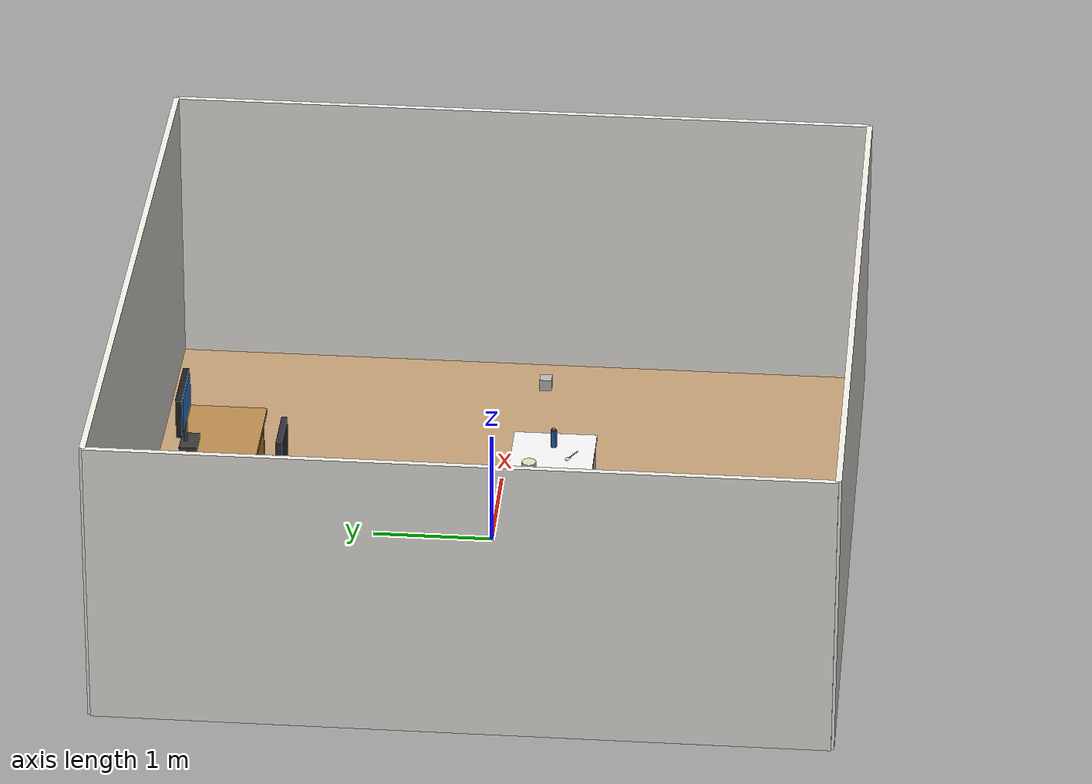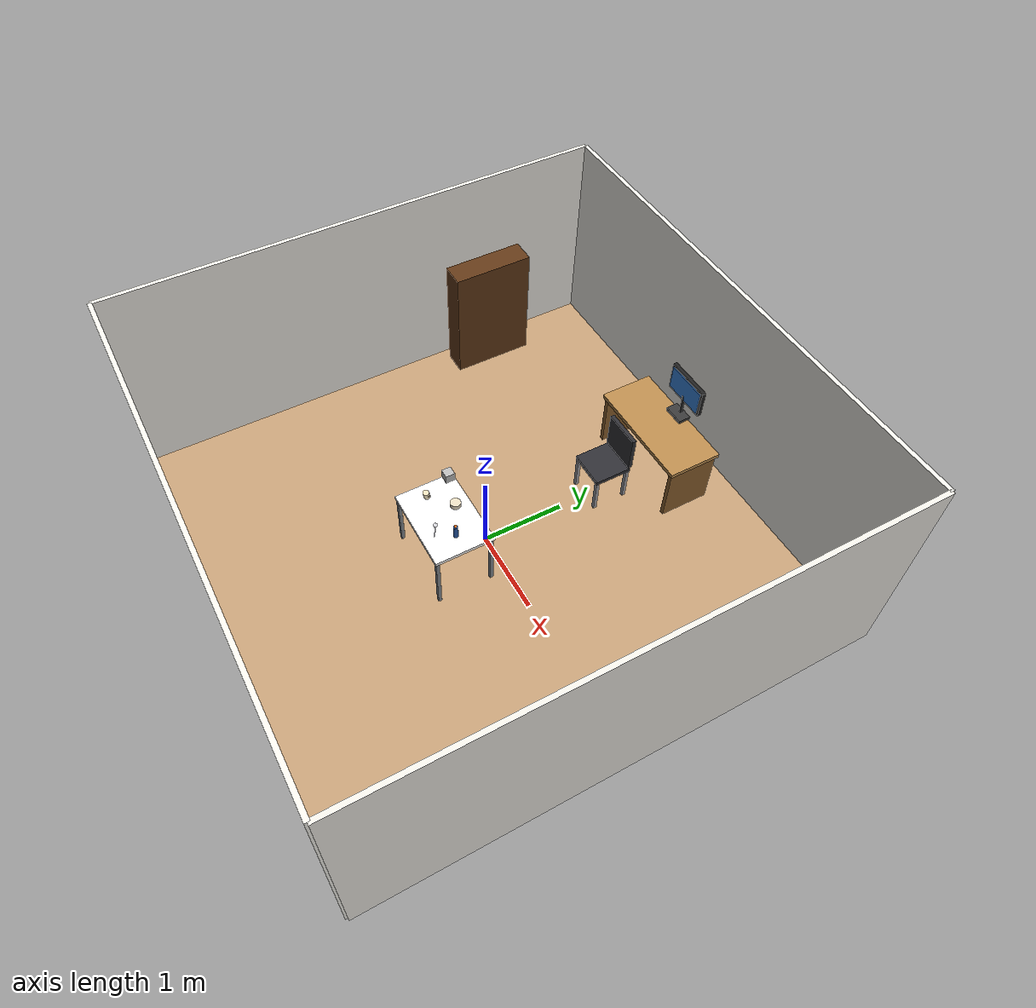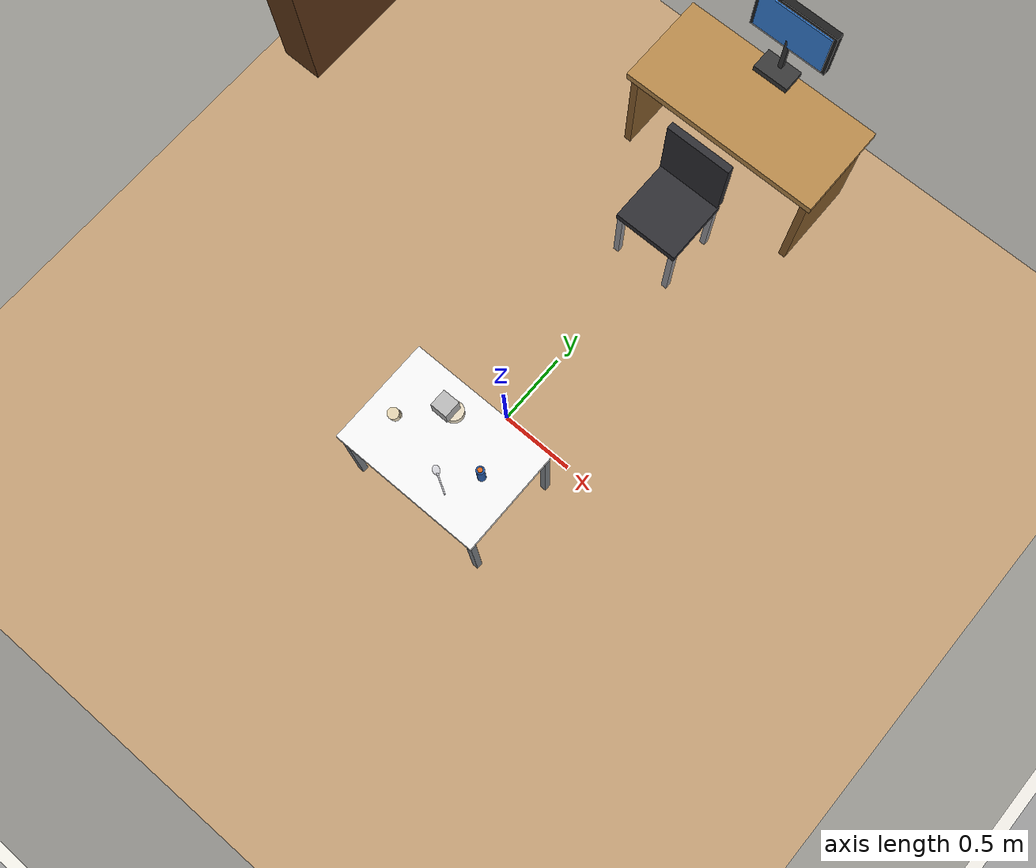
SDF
<?xml version="1.0" ?>
<sdf version="1.10">
  <world name="bps_room">
    <physics name="1ms" type="ignored">
      <max_step_size>0.001</max_step_size>
      <real_time_factor>1</real_time_factor>
      <real_time_update_rate>1000</real_time_update_rate>
    </physics>
    <gravity>0 0 -9.8</gravity>
    <magnetic_field>5.5645e-06 2.28758e-05 -4.23884e-05</magnetic_field>
    <atmosphere type="adiabatic"/>
    <scene>
      <ambient>0.4 0.4 0.4 1</ambient>
      <background>0.7 0.7 0.7 1</background>
      <shadows>true</shadows>
    </scene>
    <plugin name="gz::sim::systems::Physics" filename="gz-sim-physics-system"/>
    <plugin name="gz::sim::systems::UserCommands" filename="gz-sim-user-commands-system"/>
    <plugin name="gz::sim::systems::SceneBroadcaster" filename="gz-sim-scene-broadcaster-system"/>
    <plugin name="gz::sim::systems::Sensors" filename="gz-sim-sensors-system">
      <render_engine>ogre2</render_engine>
    </plugin>
    <plugin name="gz::sim::systems::Contact" filename="gz-sim-contact-system"/>
    <plugin filename="gz-sim-label-system" name="gz::sim::systems::Label"/>
    <light name="sun" type="directional">
      <pose>0 0 10 0 0 0</pose>
      <cast_shadows>true</cast_shadows>
      <intensity>1</intensity>
      <direction>-0.5 0.1 -0.9</direction>
      <diffuse>0.8 0.8 0.8 1</diffuse>
      <specular>0.2 0.2 0.2 1</specular>
      <attenuation><range>1000</range><linear>0.01</linear><constant>0.9</constant><quadratic>0.001</quadratic></attenuation>
      <spot><inner_angle>0</inner_angle><outer_angle>0</outer_angle><falloff>0</falloff></spot>
    </light>
    <light name="ambient_fill" type="directional">
      <pose>0 0 4 0 0 0</pose>
      <diffuse>0.4 0.4 0.4 1</diffuse>
      <specular>0.0 0.0 0.0 1</specular>
      <direction>0.3 -0.3 -1</direction>
    </light>
    <model name="floor">
      <static>true</static>
      <pose>0 0 0 0 0 0</pose>
      <link name="link">
        <collision name="collision"><geometry><box><size>6 6 0.02</size></box></geometry></collision>
        <visual name="visual"><geometry><box><size>6 6 0.02</size></box></geometry><material><ambient>0.76 0.62 0.46 1</ambient><diffuse>0.76 0.62 0.46 1</diffuse></material></visual>
      </link>
    </model>
    <model name="wall_north">
      <static>true</static>
      <pose>0 3 1.25 0 0 0</pose>
      <link name="link">
        <collision name="collision"><geometry><box><size>6 0.05 2.5</size></box></geometry></collision>
        <visual name="visual"><geometry><box><size>6 0.05 2.5</size></box></geometry><material><ambient>0.95 0.94 0.91 1</ambient><diffuse>0.95 0.94 0.91 1</diffuse></material></visual>
      </link>
    </model>
    <model name="wall_south">
      <static>true</static>
      <pose>0 -3 1.25 0 0 0</pose>
      <link name="link">
        <collision name="collision"><geometry><box><size>6 0.05 2.5</size></box></geometry></collision>
        <visual name="visual"><geometry><box><size>6 0.05 2.5</size></box></geometry><material><ambient>0.95 0.94 0.91 1</ambient><diffuse>0.95 0.94 0.91 1</diffuse></material></visual>
      </link>
    </model>
    <model name="wall_east">
      <static>true</static>
      <pose>3 0 1.25 0 0 0</pose>
      <link name="link">
        <collision name="collision"><geometry><box><size>0.05 6 2.5</size></box></geometry></collision>
        <visual name="visual"><geometry><box><size>0.05 6 2.5</size></box></geometry><material><ambient>0.93 0.92 0.89 1</ambient><diffuse>0.93 0.92 0.89 1</diffuse></material></visual>
      </link>
    </model>
    <model name="wall_west">
      <static>true</static>
      <pose>-3 0 1.25 0 0 0</pose>
      <link name="link">
        <collision name="collision"><geometry><box><size>0.05 6 2.5</size></box></geometry></collision>
        <visual name="visual"><geometry><box><size>0.05 6 2.5</size></box></geometry><material><ambient>0.93 0.92 0.89 1</ambient><diffuse>0.93 0.92 0.89 1</diffuse></material></visual>
      </link>
    </model>
    <model name="bookshelf_body">
      <static>true</static>
      <pose>-2.7 1.5 0.75 0 0 0</pose>
      <link name="link">
        <collision name="collision"><geometry><box><size>0.3 1.0 1.5</size></box></geometry></collision>
        <visual name="visual"><geometry><box><size>0.3 1.0 1.5</size></box></geometry><material><ambient>0.38 0.22 0.09 1</ambient><diffuse>0.38 0.22 0.09 1</diffuse></material></visual>
      </link>
    </model>
    <model name="shelf_1">
      <static>true</static>
      <pose>-2.7 1.5 0.4 0 0 0</pose>
      <link name="link">
        <collision name="collision"><geometry><box><size>0.28 0.95 0.02</size></box></geometry></collision>
        <visual name="visual"><geometry><box><size>0.28 0.95 0.02</size></box></geometry><material><ambient>0.50 0.32 0.14 1</ambient><diffuse>0.50 0.32 0.14 1</diffuse></material></visual>
      </link>
    </model>
    <model name="shelf_2">
      <static>true</static>
      <pose>-2.7 1.5 0.85 0 0 0</pose>
      <link name="link">
        <collision name="collision"><geometry><box><size>0.28 0.95 0.02</size></box></geometry></collision>
        <visual name="visual"><geometry><box><size>0.28 0.95 0.02</size></box></geometry><material><ambient>0.50 0.32 0.14 1</ambient><diffuse>0.50 0.32 0.14 1</diffuse></material></visual>
      </link>
    </model>
    <model name="shelf_3">
      <static>true</static>
      <pose>-2.7 1.5 1.25 0 0 0</pose>
      <link name="link">
        <collision name="collision"><geometry><box><size>0.28 0.95 0.02</size></box></geometry></collision>
        <visual name="visual"><geometry><box><size>0.28 0.95 0.02</size></box></geometry><material><ambient>0.50 0.32 0.14 1</ambient><diffuse>0.50 0.32 0.14 1</diffuse></material></visual>
      </link>
    </model>
    <model name="books_row1">
      <static>true</static>
      <pose>-2.62 1.5 0.62 0 0 0</pose>
      <link name="link">
        <visual name="visual"><geometry><box><size>0.04 0.8 0.2</size></box></geometry><material><ambient>0.78 0.18 0.18 1</ambient><diffuse>0.78 0.18 0.18 1</diffuse></material></visual>
      </link>
    </model>
    <model name="books_row2">
      <static>true</static>
      <pose>-2.62 1.5 1.06 0 0 0</pose>
      <link name="link">
        <visual name="visual"><geometry><box><size>0.04 0.7 0.18</size></box></geometry><material><ambient>0.18 0.32 0.72 1</ambient><diffuse>0.18 0.32 0.72 1</diffuse></material></visual>
      </link>
    </model>
    <model name="desk">
      <static>true</static>
      <pose>0 2.3 0.75 0 0 0</pose>
      <link name="link">
        <collision name="collision"><geometry><box><size>1.4 0.65 0.05</size></box></geometry></collision>
        <visual name="visual"><geometry><box><size>1.4 0.65 0.05</size></box></geometry><material><ambient>0.72 0.54 0.30 1</ambient><diffuse>0.72 0.54 0.30 1</diffuse></material></visual>
      </link>
    </model>
    <model name="desk_leg_left">
      <static>true</static>
      <pose>-0.65 2.3 0.375 0 0 0</pose>
      <link name="link">
        <collision name="collision"><geometry><box><size>0.05 0.6 0.75</size></box></geometry></collision>
        <visual name="visual"><geometry><box><size>0.05 0.6 0.75</size></box></geometry><material><ambient>0.55 0.38 0.18 1</ambient><diffuse>0.55 0.38 0.18 1</diffuse></material></visual>
      </link>
    </model>
    <model name="desk_leg_right">
      <static>true</static>
      <pose>0.65 2.3 0.375 0 0 0</pose>
      <link name="link">
        <collision name="collision"><geometry><box><size>0.05 0.6 0.75</size></box></geometry></collision>
        <visual name="visual"><geometry><box><size>0.05 0.6 0.75</size></box></geometry><material><ambient>0.55 0.38 0.18 1</ambient><diffuse>0.55 0.38 0.18 1</diffuse></material></visual>
      </link>
    </model>
    <model name="monitor_base">
      <static>true</static>
      <pose>0 2.55 0.82 0 0 0</pose>
      <link name="link">
        <collision name="collision"><geometry><box><size>0.25 0.15 0.04</size></box></geometry></collision>
        <visual name="visual"><geometry><box><size>0.25 0.15 0.04</size></box></geometry><material><ambient>0.22 0.22 0.22 1</ambient><diffuse>0.22 0.22 0.22 1</diffuse></material></visual>
      </link>
    </model>
    <model name="monitor_stand">
      <static>true</static>
      <pose>0 2.58 0.97 0 0 0</pose>
      <link name="link">
        <collision name="collision"><geometry><box><size>0.03 0.03 0.26</size></box></geometry></collision>
        <visual name="visual"><geometry><box><size>0.03 0.03 0.26</size></box></geometry><material><ambient>0.22 0.22 0.22 1</ambient><diffuse>0.22 0.22 0.22 1</diffuse></material></visual>
      </link>
    </model>
    <model name="monitor_screen">
      <static>true</static>
      <pose>0 2.6 1.2 0 0 0</pose>
      <link name="link">
        <collision name="collision"><geometry><box><size>0.55 0.05 0.35</size></box></geometry></collision>
        <visual name="visual"><geometry><box><size>0.55 0.05 0.35</size></box></geometry><material><ambient>0.12 0.12 0.12 1</ambient><diffuse>0.12 0.12 0.12 1</diffuse></material></visual>
      </link>
    </model>
    <model name="monitor_face">
      <static>true</static>
      <pose>0 2.57 1.2 0 0 0</pose>
      <link name="link">
        <visual name="visual"><geometry><box><size>0.5 0.01 0.3</size></box></geometry><material><ambient>0.22 0.52 0.88 1</ambient><diffuse>0.22 0.52 0.88 1</diffuse><emissive>0.10 0.25 0.45 1</emissive></material></visual>
      </link>
    </model>
    <model name="chair_seat">
      <static>true</static>
      <pose>0 1.55 0.48 0 0 0</pose>
      <link name="link">
        <collision name="collision"><geometry><box><size>0.45 0.45 0.05</size></box></geometry></collision>
        <visual name="visual"><geometry><box><size>0.45 0.45 0.05</size></box></geometry><material><ambient>0.18 0.18 0.20 1</ambient><diffuse>0.18 0.18 0.20 1</diffuse></material></visual>
      </link>
    </model>
    <model name="chair_back">
      <static>true</static>
      <pose>0 1.77 0.75 0 0 0</pose>
      <link name="link">
        <collision name="collision"><geometry><box><size>0.45 0.05 0.45</size></box></geometry></collision>
        <visual name="visual"><geometry><box><size>0.45 0.05 0.45</size></box></geometry><material><ambient>0.18 0.18 0.20 1</ambient><diffuse>0.18 0.18 0.20 1</diffuse></material></visual>
      </link>
    </model>
    <model name="chair_leg_fl">
      <static>true</static>
      <pose>-0.2 1.35 0.24 0 0 0</pose>
      <link name="link">
        <collision name="collision"><geometry><box><size>0.04 0.04 0.48</size></box></geometry></collision>
        <visual name="visual"><geometry><box><size>0.04 0.04 0.48</size></box></geometry><material><ambient>0.60 0.60 0.62 1</ambient><diffuse>0.60 0.60 0.62 1</diffuse></material></visual>
      </link>
    </model>
    <model name="chair_leg_fr">
      <static>true</static>
      <pose>0.2 1.35 0.24 0 0 0</pose>
      <link name="link">
        <collision name="collision"><geometry><box><size>0.04 0.04 0.48</size></box></geometry></collision>
        <visual name="visual"><geometry><box><size>0.04 0.04 0.48</size></box></geometry><material><ambient>0.60 0.60 0.62 1</ambient><diffuse>0.60 0.60 0.62 1</diffuse></material></visual>
      </link>
    </model>
    <model name="chair_leg_bl">
      <static>true</static>
      <pose>-0.2 1.75 0.24 0 0 0</pose>
      <link name="link">
        <collision name="collision"><geometry><box><size>0.04 0.04 0.48</size></box></geometry></collision>
        <visual name="visual"><geometry><box><size>0.04 0.04 0.48</size></box></geometry><material><ambient>0.60 0.60 0.62 1</ambient><diffuse>0.60 0.60 0.62 1</diffuse></material></visual>
      </link>
    </model>
    <model name="chair_leg_br">
      <static>true</static>
      <pose>0.2 1.75 0.24 0 0 0</pose>
      <link name="link">
        <collision name="collision"><geometry><box><size>0.04 0.04 0.48</size></box></geometry></collision>
        <visual name="visual"><geometry><box><size>0.04 0.04 0.48</size></box></geometry><material><ambient>0.60 0.60 0.62 1</ambient><diffuse>0.60 0.60 0.62 1</diffuse></material></visual>
      </link>
    </model>
    <model name="experiment_table">
      <static>true</static>
      <pose>0 -0.5 0.75 0 0 0</pose>
      <link name="link">
        <collision name="collision"><geometry><box><size>1.0 0.7 0.04</size></box></geometry></collision>
        <visual name="visual"><geometry><box><size>1.0 0.7 0.04</size></box></geometry><material><ambient>0.96 0.96 0.96 1</ambient><diffuse>0.96 0.96 0.96 1</diffuse></material></visual>
      </link>
    </model>
    <model name="table_leg_fl">
      <static>true</static>
      <pose>-0.47 -0.82 0.375 0 0 0</pose>
      <link name="link">
        <collision name="collision"><geometry><box><size>0.04 0.04 0.75</size></box></geometry></collision>
        <visual name="visual"><geometry><box><size>0.04 0.04 0.75</size></box></geometry><material><ambient>0.50 0.52 0.54 1</ambient><diffuse>0.50 0.52 0.54 1</diffuse></material></visual>
      </link>
    </model>
    <model name="table_leg_fr">
      <static>true</static>
      <pose>0.47 -0.82 0.375 0 0 0</pose>
      <link name="link">
        <collision name="collision"><geometry><box><size>0.04 0.04 0.75</size></box></geometry></collision>
        <visual name="visual"><geometry><box><size>0.04 0.04 0.75</size></box></geometry><material><ambient>0.50 0.52 0.54 1</ambient><diffuse>0.50 0.52 0.54 1</diffuse></material></visual>
      </link>
    </model>
    <model name="table_leg_bl">
      <static>true</static>
      <pose>-0.47 -0.18 0.375 0 0 0</pose>
      <link name="link">
        <collision name="collision"><geometry><box><size>0.04 0.04 0.75</size></box></geometry></collision>
        <visual name="visual"><geometry><box><size>0.04 0.04 0.75</size></box></geometry><material><ambient>0.50 0.52 0.54 1</ambient><diffuse>0.50 0.52 0.54 1</diffuse></material></visual>
      </link>
    </model>
    <model name="table_leg_br">
      <static>true</static>
      <pose>0.47 -0.18 0.375 0 0 0</pose>
      <link name="link">
        <collision name="collision"><geometry><box><size>0.04 0.04 0.75</size></box></geometry></collision>
        <visual name="visual"><geometry><box><size>0.04 0.04 0.75</size></box></geometry><material><ambient>0.50 0.52 0.54 1</ambient><diffuse>0.50 0.52 0.54 1</diffuse></material></visual>
      </link>
    </model>
    <model name="mug_body_sem1">
      <static>true</static>
      <pose>-0.32 -0.55 0.825 0.1745 0 0.5236</pose>
      <link name="link">
        <collision name="collision"><geometry><cylinder><radius>0.035</radius><length>0.095</length></cylinder></geometry></collision>
        <visual name="visual">
          <geometry>
            <cylinder>
              <radius>0.035</radius>
              <length>0.095</length>
            </cylinder>
          </geometry>

          <material>
            <ambient>0.93 0.87 0.73 1</ambient>
            <diffuse>0.93 0.87 0.73 1</diffuse>
          </material>

          <plugin
              filename="gz-sim-label-system"
              name="gz::sim::systems::Label">
            <label>1</label>
          </plugin>
        </visual>
      </link>
    </model>
    <model name="mug_handle_sem1">
      <static>true</static>
      <pose>-0.28 -0.54 0.835 0.1745 0.3491 0.5236</pose>
      <link name="link">
        <collision name="collision"><geometry><cylinder><radius>0.005</radius><length>0.045</length></cylinder></geometry></collision>
        <visual name="visual">
          <geometry>
            <cylinder>
              <radius>0.005</radius>
              <length>0.045</length>
            </cylinder>
          </geometry>

          <material>
            <ambient>0.93 0.87 0.73 1</ambient>
            <diffuse>0.93 0.87 0.73 1</diffuse>
          </material>

          <plugin
              filename="gz-sim-label-system"
              name="gz::sim::systems::Label">
            <label>1</label>
          </plugin>
        </visual>
      </link>
    </model>
    <model name="bowl_sem2">
      <static>true</static>
      <pose>-0.08 -0.32 0.795 0 0 0</pose>
      <link name="link">
        <collision name="collision"><geometry><cylinder><radius>0.06</radius><length>0.06</length></cylinder></geometry></collision>
          <visual name="visual">
            <geometry>
              <cylinder>
                <radius>0.06</radius>
                <length>0.06</length>
              </cylinder>
            </geometry>

            <material>
              <ambient>0.9 0.85 0.75 1</ambient>
              <diffuse>0.9 0.85 0.75 1</diffuse>
            </material>

            <plugin
                filename="gz-sim-label-system"
                name="gz::sim::systems::Label">
              <label>2</label>
            </plugin>
          </visual>
        </link>
    </model>
    <model name="bottle_body_sem3">
      <static>true</static>
      <pose>0.28 -0.50 0.845 0 0 0</pose>
      <link name="link">
        <collision name="collision"><geometry><cylinder><radius>0.025</radius><length>0.17</length></cylinder></geometry></collision>
        <visual name="visual">
          <geometry>
            <cylinder>
              <radius>0.025</radius>
              <length>0.17</length>
            </cylinder>
          </geometry>

          <material>
            <ambient>0.15 0.35 0.65 1</ambient>
            <diffuse>0.15 0.35 0.65 1</diffuse>
          </material>

          <plugin
              filename="gz-sim-label-system"
              name="gz::sim::systems::Label">
            <label>3</label>
          </plugin>
        </visual>
        </link>
    </model>
    <model name="bottle_cap_sem3">
      <static>true</static>
      <pose>0.28 -0.50 0.93 0 0 0</pose>
      <link name="link">
        <collision name="collision"><geometry><cylinder><radius>0.015</radius><length>0.025</length></cylinder></geometry></collision>
        <visual name="visual">
          <geometry>
            <cylinder>
              <radius>0.015</radius>
              <length>0.025</length>
            </cylinder>
          </geometry>

          <material>
            <ambient>0.85 0.4 0.1 1</ambient>
            <diffuse>0.85 0.4 0.1 1</diffuse>
          </material>

          <plugin
              filename="gz-sim-label-system"
              name="gz::sim::systems::Label">
            <label>3</label>
          </plugin>
        </visual>
      </link>
    </model>
    <model name="spoon_sem4">
  <static>true</static>
  <pose>0.14 -0.68 0.785 0 0 1.0472</pose>

  <link name="link">

    <!-- Collision -->
    <collision name="collision">
      <pose>0 0 0 0 0 0</pose>
      <geometry>
        <box>
          <size>0.008 0.12 0.006</size>
        </box>
      </geometry>
    </collision>

    <!-- Handle -->
    <visual name="handle">
      <pose>0 0 0 0 0 0</pose>
      <geometry>
        <box>
          <size>0.008 0.12 0.006</size>
        </box>
      </geometry>

      <material>
        <ambient>0.75 0.75 0.78 1</ambient>
        <diffuse>0.75 0.75 0.78 1</diffuse>
      </material>

      <plugin filename="gz-sim-label-system"
              name="gz::sim::systems::Label">
        <label>4</label>
      </plugin>
    </visual>

    <!-- Neck -->
    <visual name="neck">
      <pose>0 0.065 0 0 0 0</pose>
      <geometry>
        <box>
          <size>0.015 0.018 0.006</size>
        </box>
      </geometry>

      <material>
        <ambient>0.75 0.75 0.78 1</ambient>
        <diffuse>0.75 0.75 0.78 1</diffuse>
      </material>
    </visual>

    <!-- Bowl -->
    <visual name="bowl">
      <pose>0 0.09 0 0 0 0</pose>
      <geometry>
        <ellipsoid>
          <radii>0.022 0.030 0.004</radii>
        </ellipsoid>
      </geometry>

      <material>
        <ambient>0.82 0.82 0.84 1</ambient>
        <diffuse>0.82 0.82 0.84 1</diffuse>
      </material>
    </visual>

  </link>
</model>
    <model name="depth_camera">
      <static>true</static>
      <self_collide>false</self_collide>
      <pose>0 -0.5 1.57 0 1.5708 0</pose>
      <link name="link">
        <pose>0.05 0.05 0.05 0 0 0</pose>
        <inertial><mass>0.1</mass><inertia><ixx>0.000166667</ixx><iyy>0.000166667</iyy><izz>0.000166667</izz><ixy>0</ixy><ixz>0</ixz><iyz>0</iyz></inertia><pose>0 0 0 0 0 0</pose></inertial>
        <collision name="collision"><geometry><box><size>0.1 0.1 0.1</size></box></geometry><surface><friction><ode/></friction><bounce/><contact/></surface></collision>
        <visual name="visual"><geometry><box><size>0.1 0.1 0.1</size></box></geometry></visual>
        <sensor name="depth_camera1" type="depth_camera">
          <pose>0 0 0 0 0 0</pose>
          <topic>depth_camera</topic>
          <update_rate>10</update_rate>
          <enable_metrics>false</enable_metrics>
          <camera>
            <horizontal_fov>1.2</horizontal_fov>
            <image><width>640</width><height>480</height><format>R_FLOAT32</format><anti_aliasing>4</anti_aliasing></image>
            <camera_info_topic>__default__</camera_info_topic>
            <trigger_topic></trigger_topic>
            <triggered>false</triggered>
            <clip><near>0.1</near><far>2</far></clip>
            <save enabled="false"><path>__default__</path></save>
            <visibility_mask>4294967295</visibility_mask>
            <noise><type>none</type><mean>0</mean><stddev>0</stddev></noise>
            <distortion><k1>0</k1><k2>0</k2><k3>0</k3><p1>0</p1><p2>0</p2><center>0.5 0.5</center></distortion>
            <lens><type>stereographic</type><scale_to_hfov>true</scale_to_hfov><cutoff_angle>1.5707963267948966</cutoff_angle><env_texture_size>256</env_texture_size></lens>
            <optical_frame_id></optical_frame_id>
          </camera>
        </sensor>
        <sensor name="rgb_camera" type="camera">
          <pose>0 0 0 0 0 0</pose>
          <topic>rgb_camera</topic>
          <update_rate>10</update_rate>
          <enable_metrics>false</enable_metrics>
          <camera>
            <horizontal_fov>1.2</horizontal_fov>
            <image><width>640</width><height>480</height><format>RGB_INT8</format><anti_aliasing>4</anti_aliasing></image>
            <camera_info_topic>__default__</camera_info_topic>
            <trigger_topic></trigger_topic>
            <triggered>false</triggered>
            <clip><near>0.1</near><far>2</far></clip>
            <save enabled="false"><path>__default__</path></save>
            <visibility_mask>4294967295</visibility_mask>
            <noise><type>none</type><mean>0</mean><stddev>0</stddev></noise>
            <distortion><k1>0</k1><k2>0</k2><k3>0</k3><p1>0</p1><p2>0</p2><center>0.5 0.5</center></distortion>
            <lens><type>stereographic</type><scale_to_hfov>true</scale_to_hfov><cutoff_angle>1.5707963267948966</cutoff_angle><env_texture_size>256</env_texture_size></lens>
            <optical_frame_id></optical_frame_id>
          </camera>
        </sensor>
        <sensor name="semantic_camera" type="segmentation">
          <pose>0 0 0 0 0 0</pose>
          <topic>semantic_camera</topic>
          <always_on>true</always_on>
          <update_rate>10</update_rate>
          <camera>
            <segmentation_type>semantic</segmentation_type>
            <horizontal_fov>1.2</horizontal_fov>
            <image><width>640</width><height>480</height><format>RGB_INT8</format>
            <anti_aliasing>4</anti_aliasing></image>
            <clip><near>0.1</near><far>2.0</far></clip>
          </camera>
        </sensor>
        <enable_wind>false</enable_wind>
      </link>
    </model>
  </world>
</sdf>
